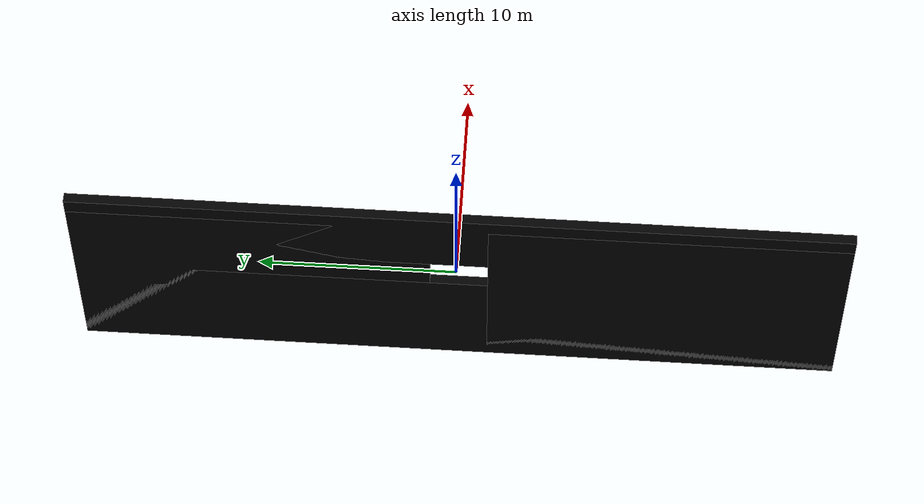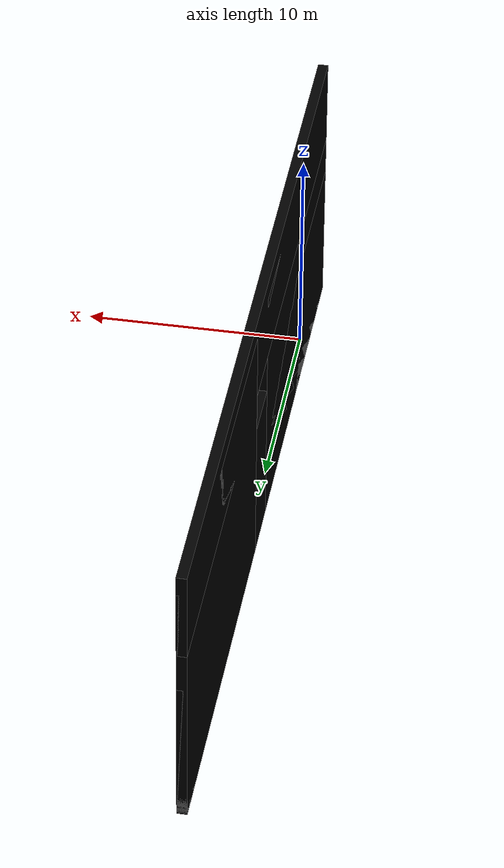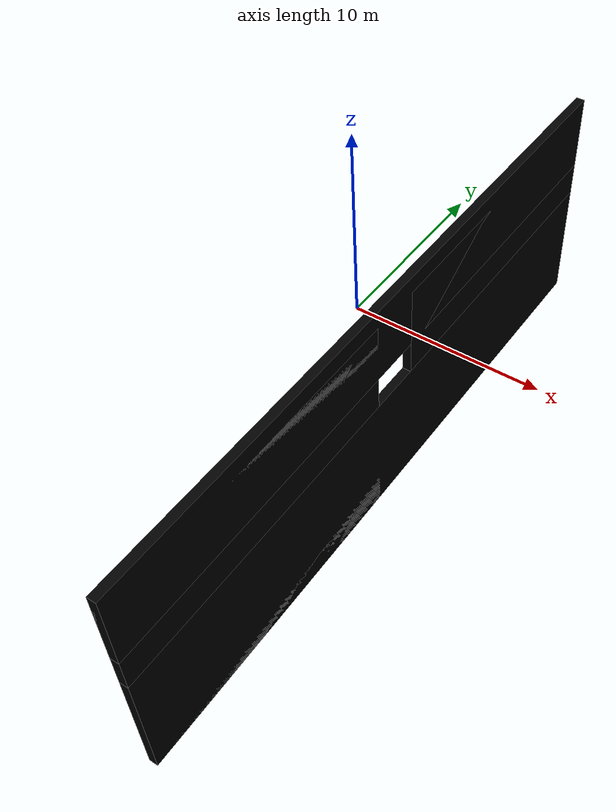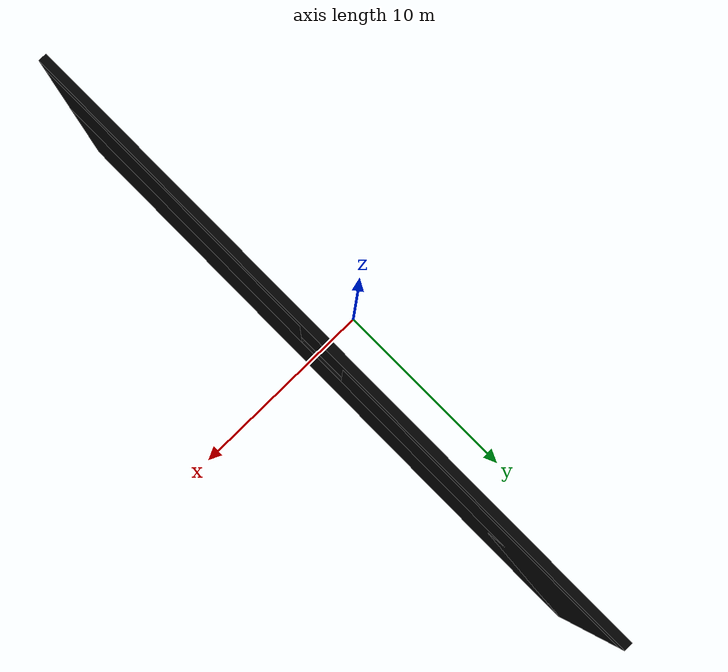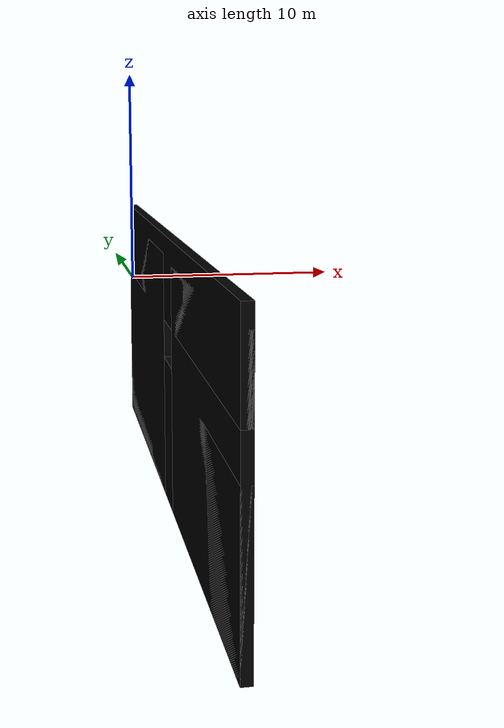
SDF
<?xml version="1.0" ?>
<sdf version="1.7">
  <model name="big_wall_composite">
    <static>true</static>

    <link name="wall">
      <!-- Box 1: AABB(2-0.25, -20, -12, 2+0.25, 20, -4.5) -->
      <collision name="collision_box_1">
        <pose>2 0 -8.25 0 0 0</pose>
        <geometry>
          <box>
            <size>0.5 40 7.5</size>
          </box>
        </geometry>
      </collision>
      <visual name="visual_box_1">
        <pose>2 0 -8.25 0 0 0</pose>
        <geometry>
          <box>
            <size>0.5 40 7.5</size>
          </box>
        </geometry>
        <material>
          <ambient>0 0 0 1</ambient>
          <diffuse>0 0 0 1</diffuse>
          <specular>0 0 0 1</specular>
          <emissive>0 0 0 1</emissive>
        </material>
        <cast_shadows>false</cast_shadows>
      </visual>

      <!-- Box 2: AABB(2-0.25, -20, -2.5, 2+0.25, 20, 2) -->
      <collision name="collision_box_2">
        <pose>2 0 -0.25 0 0 0</pose>
        <geometry>
          <box>
            <size>0.5 40 4.5</size>
          </box>
        </geometry>
      </collision>
      <visual name="visual_box_2">
        <pose>2 0 -0.25 0 0 0</pose>
        <geometry>
          <box>
            <size>0.5 40 4.5</size>
          </box>
        </geometry>
        <material>
          <ambient>0 0 0 1</ambient>
          <diffuse>0 0 0 1</diffuse>
          <specular>0 0 0 1</specular>
          <emissive>0 0 0 1</emissive>
        </material>
        <cast_shadows>false</cast_shadows>
      </visual>

      <!-- Box 3: AABB(2-0.25, -20, -12, 2+0.25, -1.5, 1) -->
      <collision name="collision_box_3">
        <pose>2 -10.75 -5.5 0 0 0</pose>
        <geometry>
          <box>
            <size>0.5 18.5 13</size>
          </box>
        </geometry>
      </collision>
      <visual name="visual_box_3">
        <pose>2 -10.75 -5.5 0 0 0</pose>
        <geometry>
          <box>
            <size>0.5 18.5 13</size>
          </box>
        </geometry>
        <material>
          <ambient>0 0 0 1</ambient>
          <diffuse>0 0 0 1</diffuse>
          <specular>0 0 0 1</specular>
          <emissive>0 0 0 1</emissive>
        </material>
        <cast_shadows>false</cast_shadows>
      </visual>

      <!-- Box 4: AABB(2-0.25, 1.5, -12, 2+0.25, 20, 1) -->
      <collision name="collision_box_4">
        <pose>2 10.75 -5.5 0 0 0</pose>
        <geometry>
          <box>
            <size>0.5 18.5 13</size>
          </box>
        </geometry>
      </collision>
      <visual name="visual_box_4">
        <pose>2 10.75 -5.5 0 0 0</pose>
        <geometry>
          <box>
            <size>0.5 18.5 13</size>
          </box>
        </geometry>
        <material>
          <ambient>0 0 0 1</ambient>
          <diffuse>0 0 0 1</diffuse>
          <specular>0 0 0 1</specular>
          <emissive>0 0 0 1</emissive>
        </material>
        <cast_shadows>false</cast_shadows>
      </visual>
    </link>
  </model>
</sdf>
